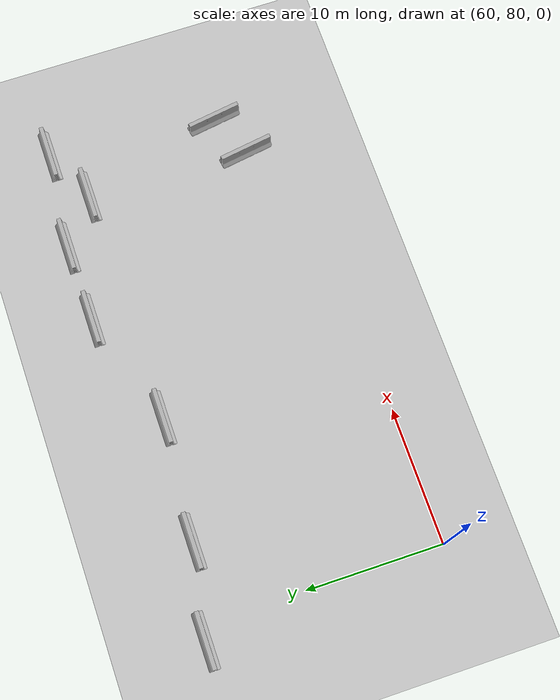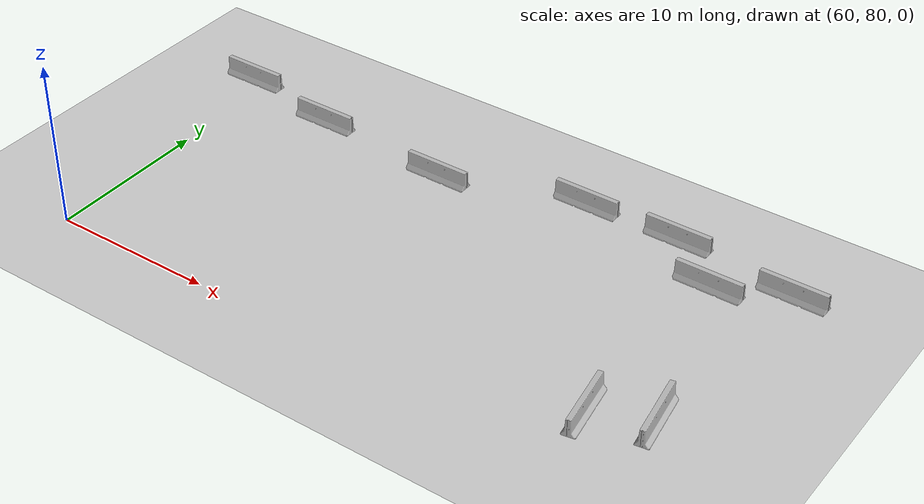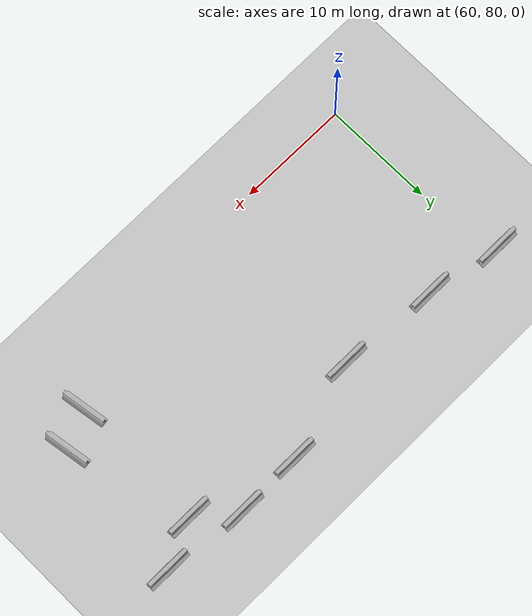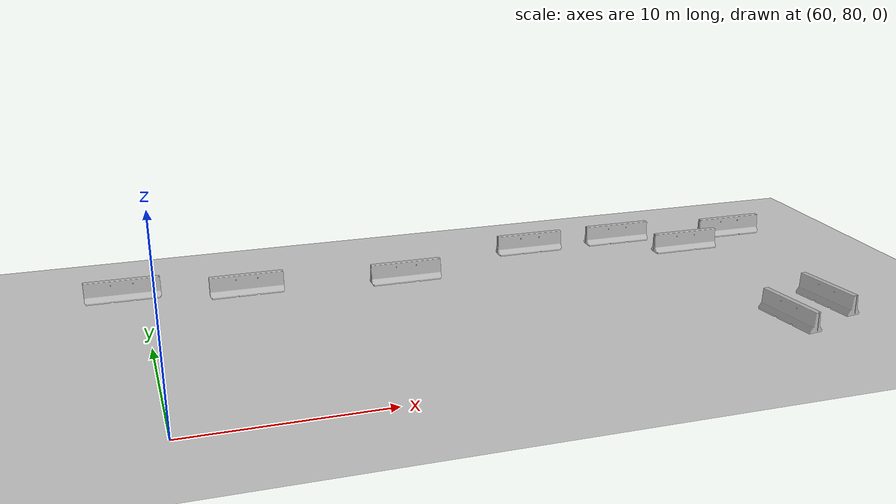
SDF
<sdf version="1.0">
 <world name="default">
  <model name="ground_plane">
   <static>1</static>
   <link name="link">
    <collision name="collision">
     <geometry><plane><normal>0 0 1</normal><size>200 200</size></plane></geometry>
     <surface><friction><ode><mu>100</mu><mu2>50</mu2></ode></friction></surface>
    </collision>
    <visual name="visual">
     <cast_shadows>0</cast_shadows>
     <geometry><plane><normal>0 0 1</normal><size>200 200</size></plane></geometry>
     <material>
      <script><uri>file://media/materials/scripts/gazebo.material</uri><name>Gazebo/Grey</name></script>
     </material>
    </visual>
    <velocity_decay><linear>0</linear><angular>0</angular></velocity_decay>
   </link>
  </model>
  <model name="jersey_barrier_3">
   <static>1</static>
   <link name="link">
    <visual name="visual">
     <geometry><mesh><uri>model://jersey_barrier/meshes/jersey_barrier.dae</uri></mesh></geometry>
    </visual>
    <collision name="upright">
     <pose>0 0 0.5715 0 -0 0</pose>
     <geometry><box><size>4.06542 0.3063 1.143</size></box></geometry>
    </collision>
    <collision name="base">
     <pose>0 0 0.032258 0 -0 0</pose>
     <geometry><box><size>4.06542 0.8107 0.064516</size></box></geometry>
    </collision>
    <collision name="base2">
     <pose>0 0 0.1 0 -0 0</pose>
     <geometry><box><size>4.06542 0.65 0.1</size></box></geometry>
    </collision>
    <collision name="base3">
     <pose>0 0 0.2 0 -0 0</pose>
     <geometry><box><size>4.06542 0.5 0.1</size></box></geometry>
    </collision>
    <collision name="left-angle">
     <pose>0 -0.224 0.2401 0.9 -0 0</pose>
     <geometry><box><size>4.06542 0.5 0.064516</size></box></geometry>
    </collision>
    <collision name="right-angle">
     <pose>0 0.224 0.2401 -0.9 0 0</pose>
     <geometry><box><size>4.06542 0.5 0.064516</size></box></geometry>
    </collision>
   </link>
   <pose>96.2925 97.4858 0 0 -0 0</pose>
  </model>
  <model name="jersey_barrier_4">
   <static>1</static>
   <link name="link">
    <visual name="visual">
     <geometry><mesh><uri>model://jersey_barrier/meshes/jersey_barrier.dae</uri></mesh></geometry>
    </visual>
    <collision name="upright">
     <pose>0 0 0.5715 0 -0 0</pose>
     <geometry><box><size>4.06542 0.3063 1.143</size></box></geometry>
    </collision>
    <collision name="base">
     <pose>0 0 0.032258 0 -0 0</pose>
     <geometry><box><size>4.06542 0.8107 0.064516</size></box></geometry>
    </collision>
    <collision name="base2">
     <pose>0 0 0.1 0 -0 0</pose>
     <geometry><box><size>4.06542 0.65 0.1</size></box></geometry>
    </collision>
    <collision name="base3">
     <pose>0 0 0.2 0 -0 0</pose>
     <geometry><box><size>4.06542 0.5 0.1</size></box></geometry>
    </collision>
    <collision name="left-angle">
     <pose>0 -0.224 0.2401 0.9 -0 0</pose>
     <geometry><box><size>4.06542 0.5 0.064516</size></box></geometry>
    </collision>
    <collision name="right-angle">
     <pose>0 0.224 0.2401 -0.9 0 0</pose>
     <geometry><box><size>4.06542 0.5 0.064516</size></box></geometry>
    </collision>
   </link>
   <pose>88.8818 98.2918 0 0 -0 0</pose>
  </model>
  <model name="jersey_barrier_5">
   <static>1</static>
   <link name="link">
    <visual name="visual">
     <geometry><mesh><uri>model://jersey_barrier/meshes/jersey_barrier.dae</uri></mesh></geometry>
    </visual>
    <collision name="upright">
     <pose>0 0 0.5715 0 -0 0</pose>
     <geometry><box><size>4.06542 0.3063 1.143</size></box></geometry>
    </collision>
    <collision name="base">
     <pose>0 0 0.032258 0 -0 0</pose>
     <geometry><box><size>4.06542 0.8107 0.064516</size></box></geometry>
    </collision>
    <collision name="base2">
     <pose>0 0 0.1 0 -0 0</pose>
     <geometry><box><size>4.06542 0.65 0.1</size></box></geometry>
    </collision>
    <collision name="base3">
     <pose>0 0 0.2 0 -0 0</pose>
     <geometry><box><size>4.06542 0.5 0.1</size></box></geometry>
    </collision>
    <collision name="left-angle">
     <pose>0 -0.224 0.2401 0.9 -0 0</pose>
     <geometry><box><size>4.06542 0.5 0.064516</size></box></geometry>
    </collision>
    <collision name="right-angle">
     <pose>0 0.224 0.2401 -0.9 0 0</pose>
     <geometry><box><size>4.06542 0.5 0.064516</size></box></geometry>
    </collision>
   </link>
   <pose>92.2417 95.6614 0 0 -0 0</pose>
  </model>
  <model name="jersey_barrier_6">
   <static>1</static>
   <link name="link">
    <visual name="visual">
     <geometry><mesh><uri>model://jersey_barrier/meshes/jersey_barrier.dae</uri></mesh></geometry>
    </visual>
    <collision name="upright">
     <pose>0 0 0.5715 0 -0 0</pose>
     <geometry><box><size>4.06542 0.3063 1.143</size></box></geometry>
    </collision>
    <collision name="base">
     <pose>0 0 0.032258 0 -0 0</pose>
     <geometry><box><size>4.06542 0.8107 0.064516</size></box></geometry>
    </collision>
    <collision name="base2">
     <pose>0 0 0.1 0 -0 0</pose>
     <geometry><box><size>4.06542 0.65 0.1</size></box></geometry>
    </collision>
    <collision name="base3">
     <pose>0 0 0.2 0 -0 0</pose>
     <geometry><box><size>4.06542 0.5 0.1</size></box></geometry>
    </collision>
    <collision name="left-angle">
     <pose>0 -0.224 0.2401 0.9 -0 0</pose>
     <geometry><box><size>4.06542 0.5 0.064516</size></box></geometry>
    </collision>
    <collision name="right-angle">
     <pose>0 0.224 0.2401 -0.9 0 0</pose>
     <geometry><box><size>4.06542 0.5 0.064516</size></box></geometry>
    </collision>
   </link>
   <pose>83.0097 98.1997 0 0 -0 0</pose>
  </model>
  <model name="jersey_barrier_7">
   <static>1</static>
   <link name="link">
    <visual name="visual">
     <geometry><mesh><uri>model://jersey_barrier/meshes/jersey_barrier.dae</uri></mesh></geometry>
    </visual>
    <collision name="upright">
     <pose>0 0 0.5715 0 -0 0</pose>
     <geometry><box><size>4.06542 0.3063 1.143</size></box></geometry>
    </collision>
    <collision name="base">
     <pose>0 0 0.032258 0 -0 0</pose>
     <geometry><box><size>4.06542 0.8107 0.064516</size></box></geometry>
    </collision>
    <collision name="base2">
     <pose>0 0 0.1 0 -0 0</pose>
     <geometry><box><size>4.06542 0.65 0.1</size></box></geometry>
    </collision>
    <collision name="base3">
     <pose>0 0 0.2 0 -0 0</pose>
     <geometry><box><size>4.06542 0.5 0.1</size></box></geometry>
    </collision>
    <collision name="left-angle">
     <pose>0 -0.224 0.2401 0.9 -0 0</pose>
     <geometry><box><size>4.06542 0.5 0.064516</size></box></geometry>
    </collision>
    <collision name="right-angle">
     <pose>0 0.224 0.2401 -0.9 0 0</pose>
     <geometry><box><size>4.06542 0.5 0.064516</size></box></geometry>
    </collision>
   </link>
   <pose>74.4894 95.5567 0 0 -0 0</pose>
  </model>
  <model name="jersey_barrier_8">
   <static>1</static>
   <link name="link">
    <visual name="visual">
     <geometry><mesh><uri>model://jersey_barrier/meshes/jersey_barrier.dae</uri></mesh></geometry>
    </visual>
    <collision name="upright">
     <pose>0 0 0.5715 0 -0 0</pose>
     <geometry><box><size>4.06542 0.3063 1.143</size></box></geometry>
    </collision>
    <collision name="base">
     <pose>0 0 0.032258 0 -0 0</pose>
     <geometry><box><size>4.06542 0.8107 0.064516</size></box></geometry>
    </collision>
    <collision name="base2">
     <pose>0 0 0.1 0 -0 0</pose>
     <geometry><box><size>4.06542 0.65 0.1</size></box></geometry>
    </collision>
    <collision name="base3">
     <pose>0 0 0.2 0 -0 0</pose>
     <geometry><box><size>4.06542 0.5 0.1</size></box></geometry>
    </collision>
    <collision name="left-angle">
     <pose>0 -0.224 0.2401 0.9 -0 0</pose>
     <geometry><box><size>4.06542 0.5 0.064516</size></box></geometry>
    </collision>
    <collision name="right-angle">
     <pose>0 0.224 0.2401 -0.9 0 0</pose>
     <geometry><box><size>4.06542 0.5 0.064516</size></box></geometry>
    </collision>
   </link>
   <pose>65.5701 96.2619 0 0 -0 0</pose>
  </model>
  <model name="jersey_barrier_9">
   <static>1</static>
   <link name="link">
    <visual name="visual">
     <geometry><mesh><uri>model://jersey_barrier/meshes/jersey_barrier.dae</uri></mesh></geometry>
    </visual>
    <collision name="upright">
     <pose>0 0 0.5715 0 -0 0</pose>
     <geometry><box><size>4.06542 0.3063 1.143</size></box></geometry>
    </collision>
    <collision name="base">
     <pose>0 0 0.032258 0 -0 0</pose>
     <geometry><box><size>4.06542 0.8107 0.064516</size></box></geometry>
    </collision>
    <collision name="base2">
     <pose>0 0 0.1 0 -0 0</pose>
     <geometry><box><size>4.06542 0.65 0.1</size></box></geometry>
    </collision>
    <collision name="base3">
     <pose>0 0 0.2 0 -0 0</pose>
     <geometry><box><size>4.06542 0.5 0.1</size></box></geometry>
    </collision>
    <collision name="left-angle">
     <pose>0 -0.224 0.2401 0.9 -0 0</pose>
     <geometry><box><size>4.06542 0.5 0.064516</size></box></geometry>
    </collision>
    <collision name="right-angle">
     <pose>0 0.224 0.2401 -0.9 0 0</pose>
     <geometry><box><size>4.06542 0.5 0.064516</size></box></geometry>
    </collision>
   </link>
   <pose>58.9738 97.4742 0 0 -0 0</pose>
  </model>
  <model name="jersey_barrier_35_clone_20">
   <static>1</static>
   <link name="link">
    <visual name="visual">
     <geometry><mesh><uri>model://jersey_barrier/meshes/jersey_barrier.dae</uri></mesh></geometry>
    </visual>
    <collision name="upright">
     <pose>0 0 0.5715 0 -0 0</pose>
     <geometry><box><size>4.06542 0.3063 1.143</size></box></geometry>
    </collision>
    <collision name="base">
     <pose>0 0 0.032258 0 -0 0</pose>
     <geometry><box><size>4.06542 0.8107 0.064516</size></box></geometry>
    </collision>
    <collision name="base2">
     <pose>0 0 0.1 0 -0 0</pose>
     <geometry><box><size>4.06542 0.65 0.1</size></box></geometry>
    </collision>
    <collision name="base3">
     <pose>0 0 0.2 0 -0 0</pose>
     <geometry><box><size>4.06542 0.5 0.1</size></box></geometry>
    </collision>
    <collision name="left-angle">
     <pose>0 -0.224 0.2401 0.9 -0 0</pose>
     <geometry><box><size>4.06542 0.5 0.064516</size></box></geometry>
    </collision>
    <collision name="right-angle">
     <pose>0 0.224 0.2401 -0.9 0 0</pose>
     <geometry><box><size>4.06542 0.5 0.064516</size></box></geometry>
    </collision>
   </link>
   <pose>92 83.522 0 0 0 -1.41593</pose>
  </model>
  <model name="jersey_barrier_35_clone_22">
   <static>1</static>
   <link name="link">
    <visual name="visual">
     <geometry><mesh><uri>model://jersey_barrier/meshes/jersey_barrier.dae</uri></mesh></geometry>
    </visual>
    <collision name="upright">
     <pose>0 0 0.5715 0 -0 0</pose>
     <geometry><box><size>4.06542 0.3063 1.143</size></box></geometry>
    </collision>
    <collision name="base">
     <pose>0 0 0.032258 0 -0 0</pose>
     <geometry><box><size>4.06542 0.8107 0.064516</size></box></geometry>
    </collision>
    <collision name="base2">
     <pose>0 0 0.1 0 -0 0</pose>
     <geometry><box><size>4.06542 0.65 0.1</size></box></geometry>
    </collision>
    <collision name="base3">
     <pose>0 0 0.2 0 -0 0</pose>
     <geometry><box><size>4.06542 0.5 0.1</size></box></geometry>
    </collision>
    <collision name="left-angle">
     <pose>0 -0.224 0.2401 0.9 -0 0</pose>
     <geometry><box><size>4.06542 0.5 0.064516</size></box></geometry>
    </collision>
    <collision name="right-angle">
     <pose>0 0.224 0.2401 -0.9 0 0</pose>
     <geometry><box><size>4.06542 0.5 0.064516</size></box></geometry>
    </collision>
   </link>
   <pose>95.2523 84.9653 0 0 0 -1.41593</pose>
  </model>
 </world>
</sdf>
